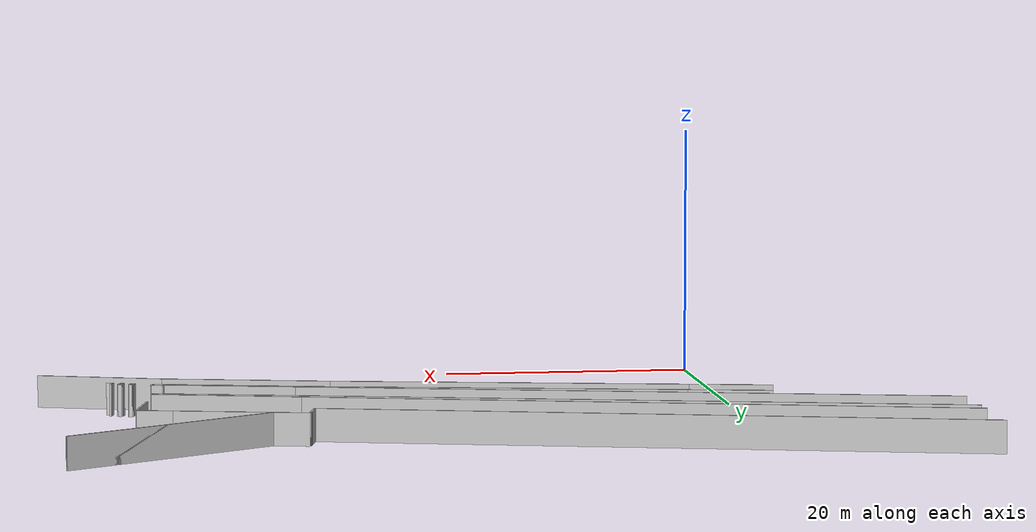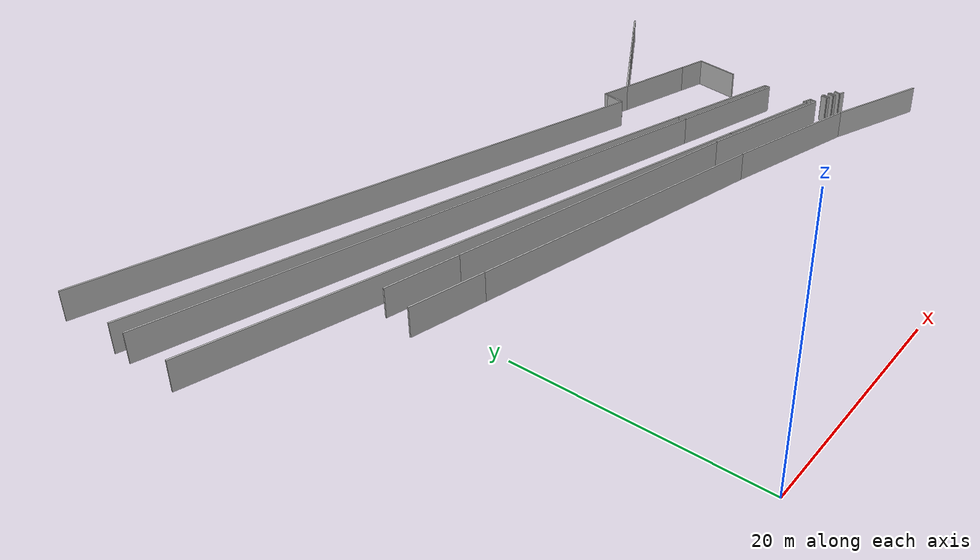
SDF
<?xml version="1.0" ?>
<sdf version="1.6">
  <model name="sps_1205">
    <pose frame="">0 0 0 0 -0 0</pose>
    <static>1</static>
    <self_collide>0</self_collide>
    <allow_auto_disable>0</allow_auto_disable>
    <link name="Wall9">
      <kinematic>0</kinematic>
      <gravity>1</gravity>
      <self_collide>0</self_collide>
      <collision name="collision">
        <geometry>
          <box>
            <size>2.75977 0.15 2.5</size>
          </box>
        </geometry>
        <pose frame="">0 0 0 0 -0 0</pose>
      </collision>
      <visual name="visual">
        <geometry>
          <box>
            <size>2.75977 0.15 2.5</size>
          </box>
        </geometry>
        <pose frame="">0 0 0 0 -0 0</pose>
        <cast_shadows>1</cast_shadows>
        <transparency>0.0</transparency>
      </visual>
      <pose frame="">35.9014 36.7282 1.25 0 -0 2.9133</pose>
    </link>
    <link name="Wall10">
      <kinematic>0</kinematic>
      <gravity>1</gravity>
      <self_collide>0</self_collide>
      <collision name="collision">
        <geometry>
          <box>
            <size>0.636607 0.15 2.5</size>
          </box>
        </geometry>
        <pose frame="">0 0 0 0 -0 0</pose>
      </collision>
      <visual name="visual">
        <geometry>
          <box>
            <size>0.636607 0.15 2.5</size>
          </box>
        </geometry>
        <pose frame="">0 0 0 0 -0 0</pose>
        <cast_shadows>1</cast_shadows>
        <transparency>0.0</transparency>
      </visual>
      <pose frame="">45.3445 20.6797 1.25 0 -0 1.2512</pose>
    </link>
    <link name="Wall11">
      <kinematic>0</kinematic>
      <gravity>1</gravity>
      <self_collide>0</self_collide>
      <collision name="collision">
        <geometry>
          <box>
            <size>0.892807 0.15 2.5</size>
          </box>
        </geometry>
        <pose frame="">0 0 0 0 -0 0</pose>
      </collision>
      <visual name="visual">
        <geometry>
          <box>
            <size>0.892807 0.15 2.5</size>
          </box>
        </geometry>
        <pose frame="">0 0 0 0 -0 0</pose>
        <cast_shadows>1</cast_shadows>
        <transparency>0.0</transparency>
      </visual>
      <pose frame="">45.0201 21.1203 1.25 0 0 -0.315222</pose>
    </link>
    <link name="Wall12">
      <kinematic>0</kinematic>
      <gravity>1</gravity>
      <self_collide>0</self_collide>
      <collision name="collision">
        <geometry>
          <box>
            <size>0.270044 0.15 2.5</size>
          </box>
        </geometry>
        <pose frame="">0 0 0 0 -0 0</pose>
      </collision>
      <visual name="visual">
        <geometry>
          <box>
            <size>0.270044 0.15 2.5</size>
          </box>
        </geometry>
        <pose frame="">0 0 0 0 -0 0</pose>
        <cast_shadows>1</cast_shadows>
        <transparency>0.0</transparency>
      </visual>
      <pose frame="">46.7982 19.8634 1.25 0 -0 2.82463</pose>
    </link>
    <link name="Wall13">
      <kinematic>0</kinematic>
      <gravity>1</gravity>
      <self_collide>0</self_collide>
      <collision name="collision">
        <geometry>
          <box>
            <size>4.45016 0.15 2.5</size>
          </box>
        </geometry>
        <pose frame="">0 0 0 0 -0 0</pose>
      </collision>
      <visual name="visual">
        <geometry>
          <box>
            <size>4.45016 0.15 2.5</size>
          </box>
        </geometry>
        <pose frame="">0 0 0 0 -0 0</pose>
        <cast_shadows>1</cast_shadows>
        <transparency>0.0</transparency>
      </visual>
      <pose frame="">46.7163 31.9306 1.25 0 0 -1.79919</pose>
    </link>
    <link name="Wall14">
      <kinematic>0</kinematic>
      <gravity>1</gravity>
      <self_collide>0</self_collide>
      <collision name="collision">
        <geometry>
          <box>
            <size>0.646784 0.15 2.5</size>
          </box>
        </geometry>
        <pose frame="">0 0 0 0 -0 0</pose>
      </collision>
      <visual name="visual">
        <geometry>
          <box>
            <size>0.646784 0.15 2.5</size>
          </box>
        </geometry>
        <pose frame="">0 0 0 0 -0 0</pose>
        <cast_shadows>1</cast_shadows>
        <transparency>0.0</transparency>
      </visual>
      <pose frame="">47.5969 19.9398 1.25 0 -0 1.25382</pose>
    </link>
    <link name="Wall15">
      <kinematic>0</kinematic>
      <gravity>1</gravity>
      <self_collide>0</self_collide>
      <collision name="collision">
        <geometry>
          <box>
            <size>0.26993 0.15 2.5</size>
          </box>
        </geometry>
        <pose frame="">0 0 0 0 -0 0</pose>
      </collision>
      <visual name="visual">
        <geometry>
          <box>
            <size>0.26993 0.15 2.5</size>
          </box>
        </geometry>
        <pose frame="">0 0 0 0 -0 0</pose>
        <cast_shadows>1</cast_shadows>
        <transparency>0.0</transparency>
      </visual>
      <pose frame="">47.8259 20.2052 1.25 0 0 -0.315673</pose>
    </link>
    <link name="Wall16">
      <kinematic>0</kinematic>
      <gravity>1</gravity>
      <self_collide>0</self_collide>
      <collision name="collision">
        <geometry>
          <box>
            <size>0.649519 0.15 2.5</size>
          </box>
        </geometry>
        <pose frame="">0 0 0 0 -0 0</pose>
      </collision>
      <visual name="visual">
        <geometry>
          <box>
            <size>0.649519 0.15 2.5</size>
          </box>
        </geometry>
        <pose frame="">0 0 0 0 -0 0</pose>
        <cast_shadows>1</cast_shadows>
        <transparency>0.0</transparency>
      </visual>
      <pose frame="">48.4228 19.6688 1.25 0 -0 1.25095</pose>
    </link>
    <link name="Wall17">
      <kinematic>0</kinematic>
      <gravity>1</gravity>
      <self_collide>0</self_collide>
      <collision name="collision">
        <geometry>
          <box>
            <size>18.3065 0.15 2.5</size>
          </box>
        </geometry>
        <pose frame="">0 0 0 0 -0 0</pose>
      </collision>
      <visual name="visual">
        <geometry>
          <box>
            <size>18.3065 0.15 2.5</size>
          </box>
        </geometry>
        <pose frame="">0 0 0 0 -0 0</pose>
        <cast_shadows>1</cast_shadows>
        <transparency>0.0</transparency>
      </visual>
      <pose frame="">45.0148 41.2553 1.25 0 0 -2.58452</pose>
    </link>
    <link name="Wall102">
      <kinematic>0</kinematic>
      <gravity>1</gravity>
      <self_collide>0</self_collide>
      <collision name="collision">
        <geometry>
          <box>
            <size>0.299763 0.15 2.5</size>
          </box>
        </geometry>
        <pose frame="">0 0 0 0 -0 0</pose>
      </collision>
      <visual name="visual">
        <geometry>
          <box>
            <size>0.299763 0.15 2.5</size>
          </box>
        </geometry>
        <pose frame="">0 0 0 0 -0 0</pose>
        <cast_shadows>1</cast_shadows>
        <transparency>0.0</transparency>
      </visual>
      <pose frame="">44.5618 21.1127 1.25 0 0 -1.79898</pose>
    </link>
    <link name="Wall106">
      <kinematic>0</kinematic>
      <gravity>1</gravity>
      <self_collide>0</self_collide>
      <collision name="collision">
        <geometry>
          <box>
            <size>51.5639 0.15 2.5</size>
          </box>
        </geometry>
        <pose frame="">0 0 0 0 -0 0</pose>
      </collision>
      <visual name="visual">
        <geometry>
          <box>
            <size>51.5639 0.15 2.5</size>
          </box>
        </geometry>
        <pose frame="">0 0 0 0 -0 0</pose>
        <cast_shadows>1</cast_shadows>
        <transparency>0.0</transparency>
      </visual>
      <pose frame="">9.46944 35.0621 1.25 0 0 -0.246916</pose>
    </link>
    <link name="Wall107">
      <kinematic>0</kinematic>
      <gravity>1</gravity>
      <self_collide>0</self_collide>
      <collision name="collision">
        <geometry>
          <box>
            <size>11.5635 0.15 2.5</size>
          </box>
        </geometry>
        <pose frame="">0 0 0 0 -0 0</pose>
      </collision>
      <visual name="visual">
        <geometry>
          <box>
            <size>11.5635 0.15 2.5</size>
          </box>
        </geometry>
        <pose frame="">0 0 0 0 -0 0</pose>
        <cast_shadows>1</cast_shadows>
        <transparency>0.0</transparency>
      </visual>
      <pose frame="">40.0759 27.3474 1.25 0 0 -0.246916</pose>
    </link>
    <link name="Wall108">
      <kinematic>0</kinematic>
      <gravity>1</gravity>
      <self_collide>0</self_collide>
      <collision name="collision">
        <geometry>
          <box>
            <size>0.643851 0.15 2.5</size>
          </box>
        </geometry>
        <pose frame="">0 0 0 0 -0 0</pose>
      </collision>
      <visual name="visual">
        <geometry>
          <box>
            <size>0.643851 0.15 2.5</size>
          </box>
        </geometry>
        <pose frame="">0 0 0 0 -0 0</pose>
        <cast_shadows>1</cast_shadows>
        <transparency>0.0</transparency>
      </visual>
      <pose frame="">47.0268 20.1272 1.25 0 -0 1.25402</pose>
    </link>
    <link name="Wall109">
      <kinematic>0</kinematic>
      <gravity>1</gravity>
      <self_collide>0</self_collide>
      <collision name="collision">
        <geometry>
          <box>
            <size>0.269889 0.15 2.5</size>
          </box>
        </geometry>
        <pose frame="">0 0 0 0 -0 0</pose>
      </collision>
      <visual name="visual">
        <geometry>
          <box>
            <size>0.269889 0.15 2.5</size>
          </box>
        </geometry>
        <pose frame="">0 0 0 0 -0 0</pose>
        <cast_shadows>1</cast_shadows>
        <transparency>0.0</transparency>
      </visual>
      <pose frame="">47.6243 19.5904 1.25 0 -0 2.8242</pose>
    </link>
    <link name="Wall179">
      <kinematic>0</kinematic>
      <gravity>1</gravity>
      <self_collide>0</self_collide>
      <collision name="collision">
        <geometry>
          <box>
            <size>51.1342 0.15 2.5</size>
          </box>
        </geometry>
        <pose frame="">0 0 0 0 -0 0</pose>
      </collision>
      <visual name="visual">
        <geometry>
          <box>
            <size>51.1342 0.15 2.5</size>
          </box>
        </geometry>
        <pose frame="">0 0 0 0 -0 0</pose>
        <cast_shadows>1</cast_shadows>
        <transparency>0.0</transparency>
      </visual>
      <pose frame="">9.25314 41.0811 1.25 0 -0 2.89341</pose>
    </link>
    <link name="Wall183">
      <kinematic>0</kinematic>
      <gravity>1</gravity>
      <self_collide>0</self_collide>
      <collision name="collision">
        <geometry>
          <box>
            <size>0.388056 0.15 2.5</size>
          </box>
        </geometry>
        <pose frame="">0 0 0 0 -0 0</pose>
      </collision>
      <visual name="visual">
        <geometry>
          <box>
            <size>0.388056 0.15 2.5</size>
          </box>
        </geometry>
        <pose frame="">0 0 0 0 -0 0</pose>
        <cast_shadows>1</cast_shadows>
        <transparency>0.0</transparency>
      </visual>
      <pose frame="">34.5134 36.8515 1.25 0 0 -1.79911</pose>
    </link>
    <link name="Wall184">
      <kinematic>0</kinematic>
      <gravity>1</gravity>
      <self_collide>0</self_collide>
      <collision name="collision">
        <geometry>
          <box>
            <size>1.91142 0.15 2.5</size>
          </box>
        </geometry>
        <pose frame="">0 0 0 0 -0 0</pose>
      </collision>
      <visual name="visual">
        <geometry>
          <box>
            <size>1.91142 0.15 2.5</size>
          </box>
        </geometry>
        <pose frame="">0 0 0 0 -0 0</pose>
        <cast_shadows>1</cast_shadows>
        <transparency>0.0</transparency>
      </visual>
      <pose frame="">34.2531 35.7316 1.25 0 0 -1.79911</pose>
    </link>
    <link name="Wall185">
      <kinematic>0</kinematic>
      <gravity>1</gravity>
      <self_collide>0</self_collide>
      <collision name="collision">
        <geometry>
          <box>
            <size>0.500124 0.15 2.5</size>
          </box>
        </geometry>
        <pose frame="">0 0 0 0 -0 0</pose>
      </collision>
      <visual name="visual">
        <geometry>
          <box>
            <size>0.500124 0.15 2.5</size>
          </box>
        </geometry>
        <pose frame="">0 0 0 0 -0 0</pose>
        <cast_shadows>1</cast_shadows>
        <transparency>0.0</transparency>
      </visual>
      <pose frame="">45.6258 25.6907 1.25 0 0 -1.79878</pose>
    </link>
    <link name="Wall186">
      <kinematic>0</kinematic>
      <gravity>1</gravity>
      <self_collide>0</self_collide>
      <collision name="collision">
        <geometry>
          <box>
            <size>2.74025 0.15 2.5</size>
          </box>
        </geometry>
        <pose frame="">0 0 0 0 -0 0</pose>
      </collision>
      <visual name="visual">
        <geometry>
          <box>
            <size>2.74025 0.15 2.5</size>
          </box>
        </geometry>
        <pose frame="">0 0 0 0 -0 0</pose>
        <cast_shadows>1</cast_shadows>
        <transparency>0.0</transparency>
      </visual>
      <pose frame="">45.8856 34.4083 1.25 0 0 -0.228528</pose>
    </link>
    <link name="Wall276">
      <kinematic>0</kinematic>
      <gravity>1</gravity>
      <self_collide>0</self_collide>
      <collision name="collision">
        <geometry>
          <box>
            <size>0.514026 0.15 2.5</size>
          </box>
        </geometry>
        <pose frame="">0 0 0 0 -0 0</pose>
      </collision>
      <visual name="visual">
        <geometry>
          <box>
            <size>0.514026 0.15 2.5</size>
          </box>
        </geometry>
        <pose frame="">0 0 0 0 -0 0</pose>
        <cast_shadows>1</cast_shadows>
        <transparency>0.0</transparency>
      </visual>
      <pose frame="">48.5647 19.2798 1.25 0 0 -0.319347</pose>
    </link>
    <link name="Wall339">
      <kinematic>0</kinematic>
      <gravity>1</gravity>
      <self_collide>0</self_collide>
      <collision name="collision">
        <geometry>
          <box>
            <size>11.3954 0.15 2.5</size>
          </box>
        </geometry>
        <pose frame="">0 0 0 0 -0 0</pose>
      </collision>
      <visual name="visual">
        <geometry>
          <box>
            <size>11.3954 0.15 2.5</size>
          </box>
        </geometry>
        <pose frame="">0 0 0 0 -0 0</pose>
        <cast_shadows>1</cast_shadows>
        <transparency>0.0</transparency>
      </visual>
      <pose frame="">40.0193 26.7364 1.25 0 -0 2.91334</pose>
    </link>
    <link name="Wall340">
      <kinematic>0</kinematic>
      <gravity>1</gravity>
      <self_collide>0</self_collide>
      <collision name="collision">
        <geometry>
          <box>
            <size>51.3314 0.15 2.5</size>
          </box>
        </geometry>
        <pose frame="">0 0 0 0 -0 0</pose>
      </collision>
      <visual name="visual">
        <geometry>
          <box>
            <size>51.3314 0.15 2.5</size>
          </box>
        </geometry>
        <pose frame="">0 0 0 0 -0 0</pose>
        <cast_shadows>1</cast_shadows>
        <transparency>0.0</transparency>
      </visual>
      <pose frame="">9.46944 33.8332 1.25 0 -0 2.91334</pose>
    </link>
    <link name="Wall423">
      <kinematic>0</kinematic>
      <gravity>1</gravity>
      <self_collide>0</self_collide>
      <collision name="collision">
        <geometry>
          <box>
            <size>0.643271 0.15 2.5</size>
          </box>
        </geometry>
        <pose frame="">0 0 0 0 -0 0</pose>
      </collision>
      <visual name="visual">
        <geometry>
          <box>
            <size>0.643271 0.15 2.5</size>
          </box>
        </geometry>
        <pose frame="">0 0 0 0 -0 0</pose>
        <cast_shadows>1</cast_shadows>
        <transparency>0.0</transparency>
      </visual>
      <pose frame="">46.7702 20.2111 1.25 0 -0 1.25373</pose>
    </link>
    <link name="Wall424">
      <kinematic>0</kinematic>
      <gravity>1</gravity>
      <self_collide>0</self_collide>
      <collision name="collision">
        <geometry>
          <box>
            <size>0.269854 0.15 2.5</size>
          </box>
        </geometry>
        <pose frame="">0 0 0 0 -0 0</pose>
      </collision>
      <visual name="visual">
        <geometry>
          <box>
            <size>0.269854 0.15 2.5</size>
          </box>
        </geometry>
        <pose frame="">0 0 0 0 -0 0</pose>
        <cast_shadows>1</cast_shadows>
        <transparency>0.0</transparency>
      </visual>
      <pose frame="">46.9987 20.4749 1.25 0 0 -0.314813</pose>
    </link>
    <link name="Wall512">
      <kinematic>0</kinematic>
      <gravity>1</gravity>
      <self_collide>0</self_collide>
      <collision name="collision">
        <geometry>
          <box>
            <size>10.3277 0.15 2.5</size>
          </box>
        </geometry>
        <pose frame="">0 0 0 0 -0 0</pose>
      </collision>
      <visual name="visual">
        <geometry>
          <box>
            <size>10.3277 0.15 2.5</size>
          </box>
        </geometry>
        <pose frame="">0 0 0 0 -0 0</pose>
        <cast_shadows>1</cast_shadows>
        <transparency>0.0</transparency>
      </visual>
      <pose frame="">39.4986 22.1382 1.25 0 -0 2.91274</pose>
    </link>
    <link name="Wall513">
      <kinematic>0</kinematic>
      <gravity>1</gravity>
      <self_collide>0</self_collide>
      <collision name="collision">
        <geometry>
          <box>
            <size>51.3386 0.15 2.5</size>
          </box>
        </geometry>
        <pose frame="">0 0 0 0 -0 0</pose>
      </collision>
      <visual name="visual">
        <geometry>
          <box>
            <size>51.3386 0.15 2.5</size>
          </box>
        </geometry>
        <pose frame="">0 0 0 0 -0 0</pose>
        <cast_shadows>1</cast_shadows>
        <transparency>0.0</transparency>
      </visual>
      <pose frame="">9.46944 29.133 1.25 0 -0 2.91274</pose>
    </link>
    <link name="Wall516">
      <kinematic>0</kinematic>
      <gravity>1</gravity>
      <self_collide>0</self_collide>
      <collision name="collision">
        <geometry>
          <box>
            <size>0.647247 0.15 2.5</size>
          </box>
        </geometry>
        <pose frame="">0 0 0 0 -0 0</pose>
      </collision>
      <visual name="visual">
        <geometry>
          <box>
            <size>0.647247 0.15 2.5</size>
          </box>
        </geometry>
        <pose frame="">0 0 0 0 -0 0</pose>
        <cast_shadows>1</cast_shadows>
        <transparency>0.0</transparency>
      </visual>
      <pose frame="">47.8534 19.8558 1.25 0 -0 1.25376</pose>
    </link>
    <link name="Wall597">
      <kinematic>0</kinematic>
      <gravity>1</gravity>
      <self_collide>0</self_collide>
      <collision name="collision">
        <geometry>
          <box>
            <size>10.0429 0.15 2.5</size>
          </box>
        </geometry>
        <pose frame="">0 0 0 0 -0 0</pose>
      </collision>
      <visual name="visual">
        <geometry>
          <box>
            <size>10.0429 0.15 2.5</size>
          </box>
        </geometry>
        <pose frame="">0 0 0 0 -0 0</pose>
        <cast_shadows>1</cast_shadows>
        <transparency>0.0</transparency>
      </visual>
      <pose frame="">49.2002 15.9099 1.25 0 0 -0.319329</pose>
    </link>
    <link name="Wall2474">
      <kinematic>0</kinematic>
      <gravity>1</gravity>
      <self_collide>0</self_collide>
      <collision name="collision">
        <geometry>
          <box>
            <size>7.50025 0.15 2.5</size>
          </box>
        </geometry>
        <pose frame="">0 0 0 0 -0 0</pose>
      </collision>
      <visual name="visual">
        <geometry>
          <box>
            <size>7.50025 0.15 2.5</size>
          </box>
        </geometry>
        <pose frame="">0 0 0 0 -0 0</pose>
        <cast_shadows>1</cast_shadows>
        <transparency>0.0</transparency>
      </visual>
      <pose frame="">40.8982 35.5671 1.25 0 -0 2.91327</pose>
    </link>
    <link name="Wall2475">
      <kinematic>0</kinematic>
      <gravity>1</gravity>
      <self_collide>0</self_collide>
      <collision name="collision">
        <geometry>
          <box>
            <size>18.3065 0.15 2.5</size>
          </box>
        </geometry>
        <pose frame="">0 0 0 0 -0 0</pose>
      </collision>
      <visual name="visual">
        <geometry>
          <box>
            <size>18.3065 0.15 2.5</size>
          </box>
        </geometry>
        <pose frame="">0 0 0 0 -0 0</pose>
        <cast_shadows>1</cast_shadows>
        <transparency>0.0</transparency>
      </visual>
      <pose frame="">45.0148 41.2553 1.25 0 -0 0.557076</pose>
    </link>
    <link name="Wall2685">
      <kinematic>0</kinematic>
      <gravity>1</gravity>
      <self_collide>0</self_collide>
      <collision name="collision">
        <geometry>
          <box>
            <size>6.49419 0.15 2.5</size>
          </box>
        </geometry>
        <pose frame="">0 0 0 0 -0 0</pose>
      </collision>
      <visual name="visual">
        <geometry>
          <box>
            <size>6.49419 0.15 2.5</size>
          </box>
        </geometry>
        <pose frame="">0 0 0 0 -0 0</pose>
        <cast_shadows>1</cast_shadows>
        <transparency>0.0</transparency>
      </visual>
      <pose frame="">1.06335 26.4301 1.25 0 0 -0.192817</pose>
    </link>
    <link name="Wall2686">
      <kinematic>0</kinematic>
      <gravity>1</gravity>
      <self_collide>0</self_collide>
      <collision name="collision">
        <geometry>
          <box>
            <size>27.8071 0.15 2.5</size>
          </box>
        </geometry>
        <pose frame="">0 0 0 0 -0 0</pose>
      </collision>
      <visual name="visual">
        <geometry>
          <box>
            <size>27.8071 0.15 2.5</size>
          </box>
        </geometry>
        <pose frame="">0 0 0 0 -0 0</pose>
        <cast_shadows>1</cast_shadows>
        <transparency>0.0</transparency>
      </visual>
      <pose frame="">17.8963 23.1442 1.25 0 0 -0.192776</pose>
    </link>
    <link name="Wall2687">
      <kinematic>0</kinematic>
      <gravity>1</gravity>
      <self_collide>0</self_collide>
      <collision name="collision">
        <geometry>
          <box>
            <size>13.2336 0.15 2.5</size>
          </box>
        </geometry>
        <pose frame="">0 0 0 0 -0 0</pose>
      </collision>
      <visual name="visual">
        <geometry>
          <box>
            <size>13.2336 0.15 2.5</size>
          </box>
        </geometry>
        <pose frame="">0 0 0 0 -0 0</pose>
        <cast_shadows>1</cast_shadows>
        <transparency>0.0</transparency>
      </visual>
      <pose frame="">37.9874 18.9834 1.25 0 0 -0.228235</pose>
    </link>
    <link name="Wall3528">
      <kinematic>0</kinematic>
      <gravity>1</gravity>
      <self_collide>0</self_collide>
      <collision name="collision">
        <geometry>
          <box>
            <size>6.49395 0.15 2.5</size>
          </box>
        </geometry>
        <pose frame="">0 0 0 0 -0 0</pose>
      </collision>
      <visual name="visual">
        <geometry>
          <box>
            <size>6.49395 0.15 2.5</size>
          </box>
        </geometry>
        <pose frame="">0 0 0 0 -0 0</pose>
        <cast_shadows>1</cast_shadows>
        <transparency>0.0</transparency>
      </visual>
      <pose frame="">1.63824 29.3745 1.25 0 0 -0.192824</pose>
    </link>
    <link name="Wall3529">
      <kinematic>0</kinematic>
      <gravity>1</gravity>
      <self_collide>0</self_collide>
      <collision name="collision">
        <geometry>
          <box>
            <size>27.8603 0.15 2.5</size>
          </box>
        </geometry>
        <pose frame="">0 0 0 0 -0 0</pose>
      </collision>
      <visual name="visual">
        <geometry>
          <box>
            <size>27.8603 0.15 2.5</size>
          </box>
        </geometry>
        <pose frame="">0 0 0 0 -0 0</pose>
        <cast_shadows>1</cast_shadows>
        <transparency>0.0</transparency>
      </visual>
      <pose frame="">18.4972 26.0835 1.25 0 0 -0.192776</pose>
    </link>
    <link name="Wall3530">
      <kinematic>0</kinematic>
      <gravity>1</gravity>
      <self_collide>0</self_collide>
      <collision name="collision">
        <geometry>
          <box>
            <size>13.4233 0.15 2.5</size>
          </box>
        </geometry>
        <pose frame="">0 0 0 0 -0 0</pose>
      </collision>
      <visual name="visual">
        <geometry>
          <box>
            <size>13.4233 0.15 2.5</size>
          </box>
        </geometry>
        <pose frame="">0 0 0 0 -0 0</pose>
        <cast_shadows>1</cast_shadows>
        <transparency>0.0</transparency>
      </visual>
      <pose frame="">38.7069 21.8961 1.25 0 0 -0.228237</pose>
    </link>
  </model>
</sdf>
